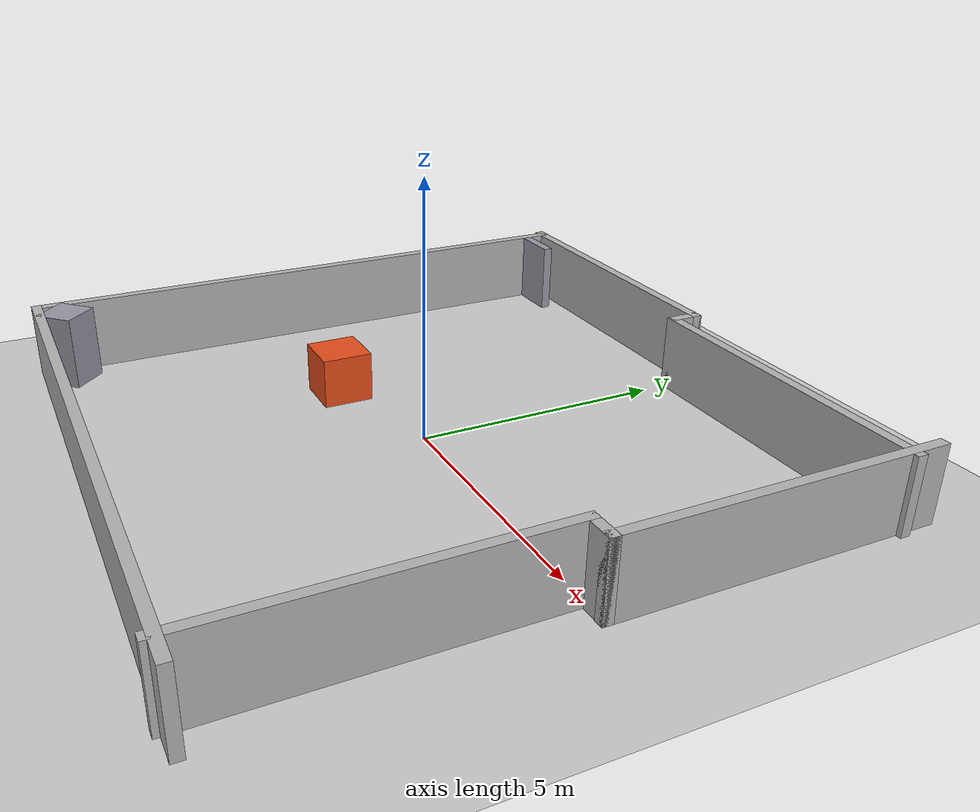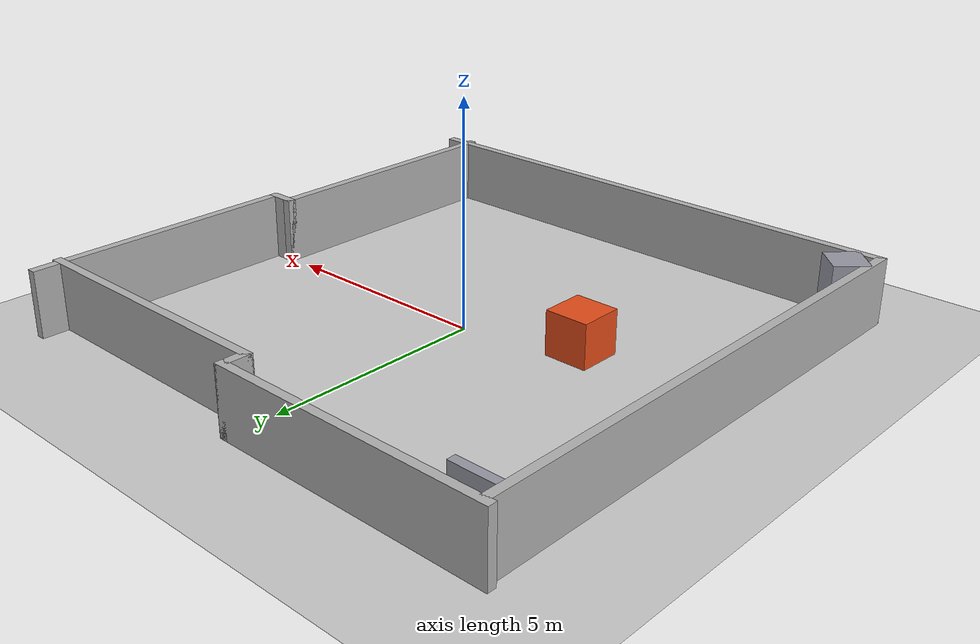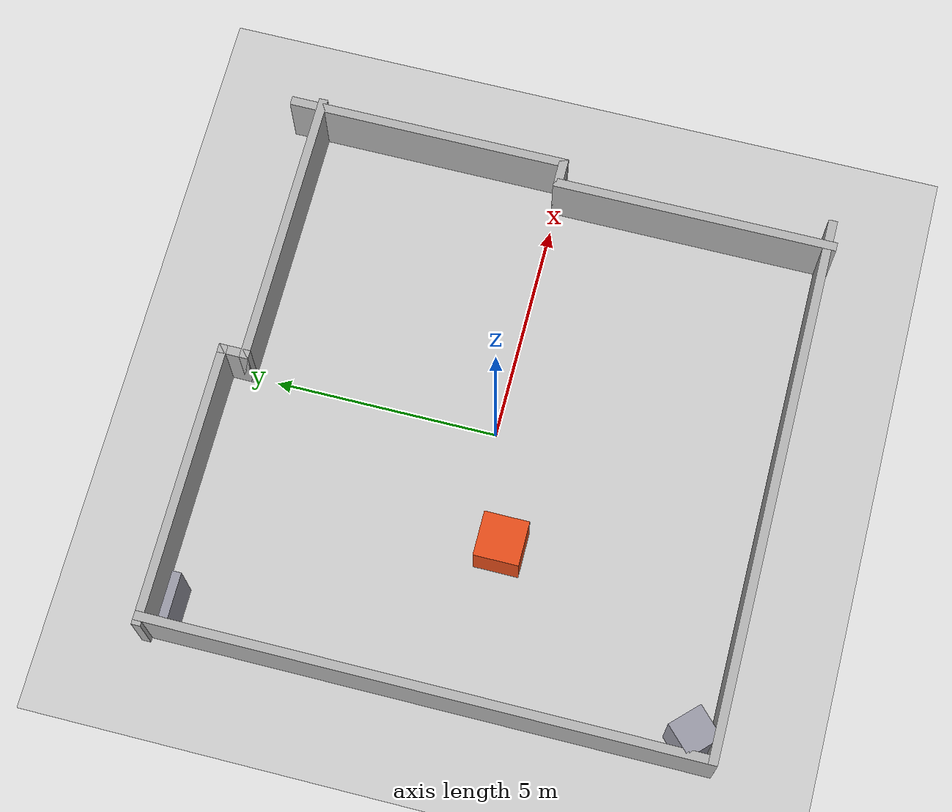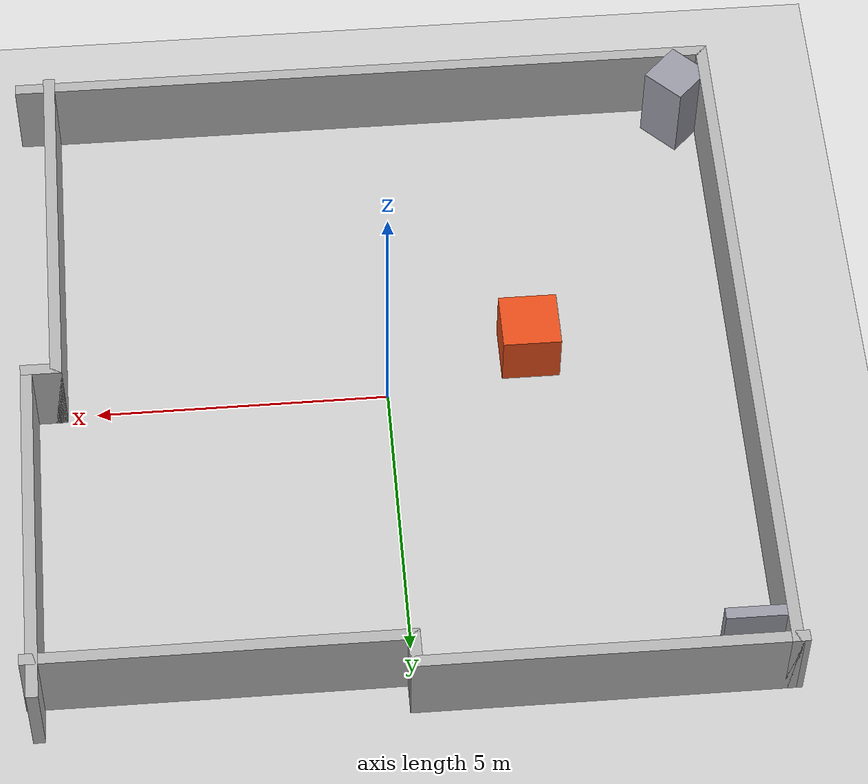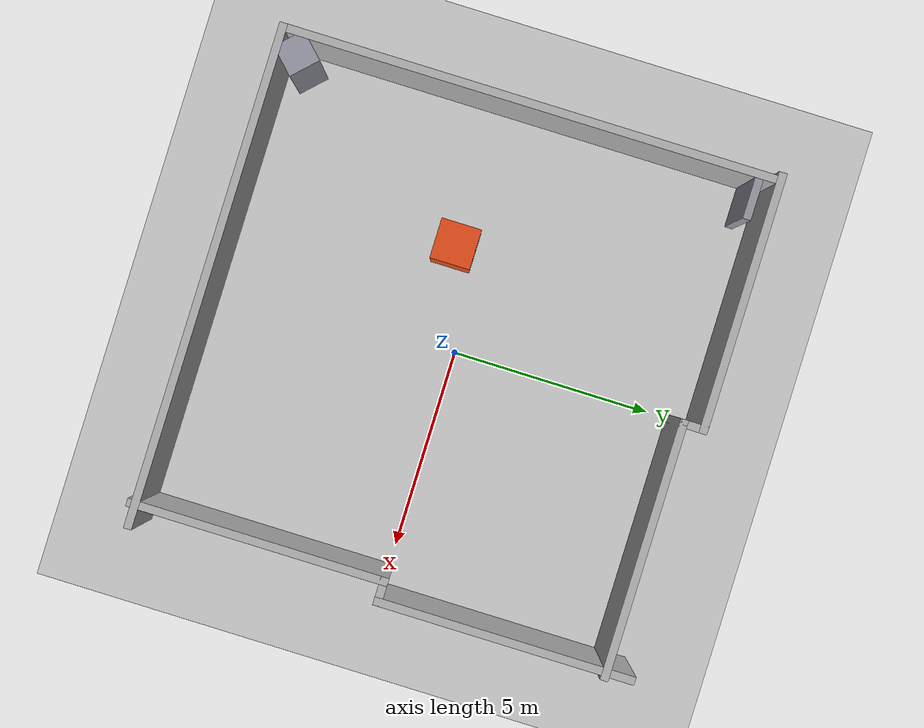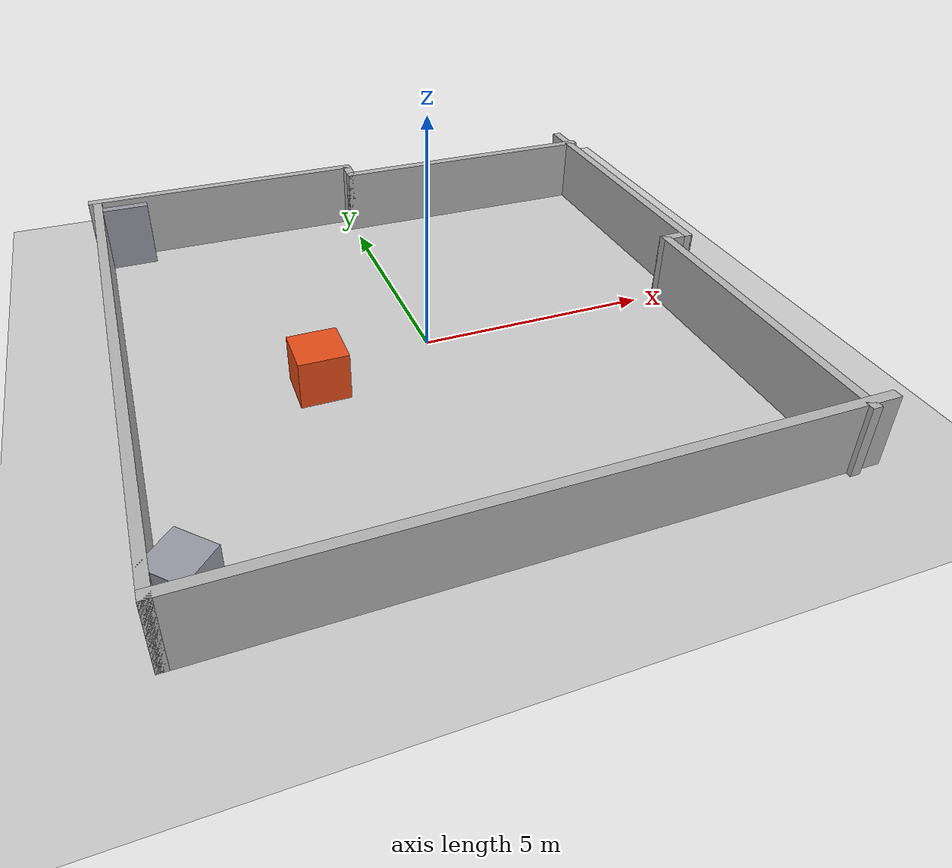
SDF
<?xml version="1.0" ?>
<sdf version="1.6">
  <world name="demo_lawn">

    <!-- 標準光源與地面 -->
    <include>
      <uri>model://sun</uri>
    </include>

    <include>
      <uri>model://ground_plane</uri>
    </include>

    <!-- 物理設定 (與 mow_field.world 相同) -->
    <physics name="default_physics" default="true" type="ode">
      <max_step_size>0.001</max_step_size>
      <real_time_factor>1.0</real_time_factor>
      <real_time_update_rate>1000</real_time_update_rate>
      <!-- ODE 求解器疊代次數 (同 demo_lawn.world)：預設 50 會讓靜止車輛自己滑動 -->
      <ode><solver><iters>200</iters></solver></ode>
    </physics>

    <!-- 北牆：分成兩段，東段內縮 0.5 m 做出東北角的凹角 -->
    <model name="wall_north_west">
      <static>true</static>
      <pose>-3.1 6.1 0.75 0 0 0</pose>
      <link name="link">
        <collision name="collision">
          <geometry>
            <box><size>6.4 0.2 1.5</size></box>
          </geometry>
        </collision>
        <visual name="visual">
          <geometry>
            <box><size>6.4 0.2 1.5</size></box>
          </geometry>
          <material>
            <ambient>0.6 0.6 0.6 1</ambient>
            <diffuse>0.7 0.7 0.7 1</diffuse>
          </material>
        </visual>
      </link>
    </model>

    <model name="wall_north_east">
      <static>true</static>
      <pose>3.1 5.6 0.75 0 0 0</pose>
      <link name="link">
        <collision name="collision">
          <geometry>
            <box><size>6.4 0.2 1.5</size></box>
          </geometry>
        </collision>
        <visual name="visual">
          <geometry>
            <box><size>6.4 0.2 1.5</size></box>
          </geometry>
          <material>
            <ambient>0.6 0.6 0.6 1</ambient>
            <diffuse>0.7 0.7 0.7 1</diffuse>
          </material>
        </visual>
      </link>
    </model>

    <!-- 凹角的側板：把北牆兩段之間 0.5 m 的高低差補起來 -->
    <model name="wall_north_step">
      <static>true</static>
      <pose>0.0 5.85 0.75 0 0 0</pose>
      <link name="link">
        <collision name="collision">
          <geometry>
            <box><size>0.2 0.7 1.5</size></box>
          </geometry>
        </collision>
        <visual name="visual">
          <geometry>
            <box><size>0.2 0.7 1.5</size></box>
          </geometry>
          <material>
            <ambient>0.6 0.6 0.6 1</ambient>
            <diffuse>0.7 0.7 0.7 1</diffuse>
          </material>
        </visual>
      </link>
    </model>

    <model name="wall_south">
      <static>true</static>
      <pose>0.0 -6.1 0.75 0 0 0</pose>
      <link name="link">
        <collision name="collision">
          <geometry>
            <box><size>12.4 0.2 1.5</size></box>
          </geometry>
        </collision>
        <visual name="visual">
          <geometry>
            <box><size>12.4 0.2 1.5</size></box>
          </geometry>
          <material>
            <ambient>0.6 0.6 0.6 1</ambient>
            <diffuse>0.7 0.7 0.7 1</diffuse>
          </material>
        </visual>
      </link>
    </model>

    <!-- 東牆：分成兩段，南段內縮 0.5 m 做出東南角的凹角 -->
    <model name="wall_east_north">
      <static>true</static>
      <pose>6.1 3.1 0.75 0 0 0</pose>
      <link name="link">
        <collision name="collision">
          <geometry>
            <box><size>0.2 6.4 1.5</size></box>
          </geometry>
        </collision>
        <visual name="visual">
          <geometry>
            <box><size>0.2 6.4 1.5</size></box>
          </geometry>
          <material>
            <ambient>0.6 0.6 0.6 1</ambient>
            <diffuse>0.7 0.7 0.7 1</diffuse>
          </material>
        </visual>
      </link>
    </model>

    <model name="wall_east_south">
      <static>true</static>
      <pose>5.6 -3.1 0.75 0 0 0</pose>
      <link name="link">
        <collision name="collision">
          <geometry>
            <box><size>0.2 6.4 1.5</size></box>
          </geometry>
        </collision>
        <visual name="visual">
          <geometry>
            <box><size>0.2 6.4 1.5</size></box>
          </geometry>
          <material>
            <ambient>0.6 0.6 0.6 1</ambient>
            <diffuse>0.7 0.7 0.7 1</diffuse>
          </material>
        </visual>
      </link>
    </model>

    <!-- 凹角的側板：把東牆兩段之間 0.5 m 的高低差補起來 -->
    <model name="wall_east_step">
      <static>true</static>
      <pose>5.85 0.0 0.75 0 0 0</pose>
      <link name="link">
        <collision name="collision">
          <geometry>
            <box><size>0.7 0.2 1.5</size></box>
          </geometry>
        </collision>
        <visual name="visual">
          <geometry>
            <box><size>0.7 0.2 1.5</size></box>
          </geometry>
          <material>
            <ambient>0.6 0.6 0.6 1</ambient>
            <diffuse>0.7 0.7 0.7 1</diffuse>
          </material>
        </visual>
      </link>
    </model>

    <model name="wall_west">
      <static>true</static>
      <pose>-6.1 0.0 0.75 0 0 0</pose>
      <link name="link">
        <collision name="collision">
          <geometry>
            <box><size>0.2 12.4 1.5</size></box>
          </geometry>
        </collision>
        <visual name="visual">
          <geometry>
            <box><size>0.2 12.4 1.5</size></box>
          </geometry>
          <material>
            <ambient>0.6 0.6 0.6 1</ambient>
            <diffuse>0.7 0.7 0.7 1</diffuse>
          </material>
        </visual>
      </link>
    </model>

    <!--
      西北角的短翼：從西牆北端往東伸出 1.0 m，
      給 scan matching 一個明確的角點特徵。
    -->
    <model name="corner_wing_nw">
      <static>true</static>
      <pose>-5.5 5.6 0.75 0 0 0</pose>
      <link name="link">
        <collision name="collision">
          <geometry>
            <box><size>1.0 0.2 1.5</size></box>
          </geometry>
        </collision>
        <visual name="visual">
          <geometry>
            <box><size>1.0 0.2 1.5</size></box>
          </geometry>
          <material>
            <ambient>0.5 0.5 0.55 1</ambient>
            <diffuse>0.6 0.6 0.65 1</diffuse>
          </material>
        </visual>
      </link>
    </model>

    <!--
      西南角的方柱：貼著角落把 90 度直角削成兩個 45 度斜面，
      同樣是給 scan matching 用的特徵。貼在角落、不進入作業區。
    -->
    <model name="corner_post_sw">
      <static>true</static>
      <pose>-5.6 -5.6 0.75 0 0 0.785</pose>
      <link name="link">
        <collision name="collision">
          <geometry>
            <box><size>0.8 0.8 1.5</size></box>
          </geometry>
        </collision>
        <visual name="visual">
          <geometry>
            <box><size>0.8 0.8 1.5</size></box>
          </geometry>
          <material>
            <ambient>0.5 0.5 0.55 1</ambient>
            <diffuse>0.6 0.6 0.65 1</diffuse>
          </material>
        </visual>
      </link>
    </model>

    <model name="obstacle_center">
      <static>true</static>
      <pose>-2.5 -0.75 0.5 0 0 0</pose>
      <link name="link">
        <collision name="collision">
          <geometry>
            <box><size>1.0 1.0 1.0</size></box>
          </geometry>
        </collision>
        <visual name="visual">
          <geometry>
            <box><size>1.0 1.0 1.0</size></box>
          </geometry>
          <material>
            <ambient>0.8 0.2 0.1 1</ambient>
            <diffuse>0.9 0.3 0.1 1</diffuse>
          </material>
        </visual>
      </link>
    </model>

  </world>

</sdf>
